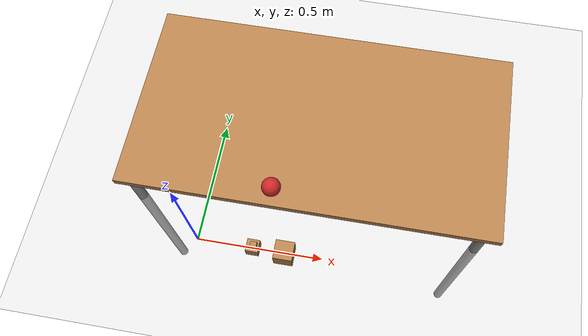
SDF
<sdf version="1.7">
 <world name="default">
  <light name="sun" type="directional">
   <pose>0 0 10 0 -0 0</pose>
   <diffuse>0.8 0.8 0.8 1</diffuse>
   <specular>0.2 0.2 0.2 1</specular>
   <attenuation>
    <range>1000</range>
    <constant>0.9</constant>
    <linear>0.01</linear>
    <quadratic>0.001</quadratic>
   </attenuation>
   <direction>-0.5 0.1 -0.9</direction>
   <spot><inner_angle>0</inner_angle><outer_angle>0</outer_angle><falloff>0</falloff></spot>
  </light>
  <model name="ground_plane">
   <static>1</static>
   <link name="link">
    <collision name="collision">
     <geometry><plane><normal>0 0 1</normal><size>100 100</size></plane></geometry>
     <surface><friction><ode><mu>100</mu><mu2>50</mu2></ode></friction></surface>
    </collision>
    <visual name="visual">
     <cast_shadows>0</cast_shadows>
     <geometry><plane><normal>0 0 1</normal><size>100 100</size></plane></geometry>
     <material>
      <script><uri>file://media/materials/scripts/gazebo.material</uri><name>Gazebo/Grey</name></script>
     </material>
    </visual>
   </link>
  </model>
  <gravity>0 0 -9.8</gravity>
  <magnetic_field>6e-06 2.3e-05 -4.2e-05</magnetic_field>
  <atmosphere type="adiabatic"/>
  <physics type="ode">
   <max_step_size>0.001</max_step_size>
   <real_time_factor>1</real_time_factor>
   <real_time_update_rate>1000</real_time_update_rate>
  </physics>
  <scene><ambient>0.4 0.4 0.4 1</ambient><background>0.7 0.7 0.7 1</background><shadows>1</shadows></scene>
  <audio><device>default</device></audio>
  <spherical_coordinates>
   <surface_model>EARTH_WGS84</surface_model>
   <latitude_deg>0</latitude_deg>
   <longitude_deg>0</longitude_deg>
   <elevation>0</elevation>
   <heading_deg>0</heading_deg>
  </spherical_coordinates>
  <model name="wood_cube_2_5cm">
   <link name="link">
    <pose>0 0 0.0125 0 -0 0</pose>
    <inertial>
     <mass>0.0073</mass>
     <inertia>
      <ixx>7.60417e-07</ixx>
      <ixy>0</ixy>
      <ixz>0</ixz>
      <iyy>7.60417e-07</iyy>
      <iyz>0</iyz>
      <izz>7.60417e-07</izz>
     </inertia>
    </inertial>
    <collision name="collision">
     <geometry><box><size>0.025 0.025 0.025</size></box></geometry>
     <surface>
      <contact>
       <poissons_ratio>0.347</poissons_ratio>
       <elastic_modulus>8.8e+09</elastic_modulus>
       <ode><kp>100000</kp><kd>100</kd><max_vel>100</max_vel><min_depth>0.001</min_depth></ode>
      </contact>
      <friction>
       <torsional>
        <coefficient>1</coefficient>
        <use_patch_radius>0</use_patch_radius>
        <surface_radius>0.01</surface_radius>
       </torsional>
      </friction>
     </surface>
    </collision>
    <visual name="visual">
     <geometry><box><size>0.025 0.025 0.025</size></box></geometry>
     <material>
      <script><uri>file://media/materials/scripts/gazebo.material</uri><name>Gazebo/Wood</name></script>
     </material>
    </visual>
   </link>
   <pose>0.231735 -0.01913 0.060951 -1.57284 0.006912 -0.008883</pose>
  </model>
  <model name="wood_cube_5cm">
   <link name="link">
    <pose>0 0 0.025 0 -0 0</pose>
    <inertial>
     <mass>0.0565</mass>
     <inertia>
      <ixx>2.35417e-05</ixx>
      <ixy>0</ixy>
      <ixz>0</ixz>
      <iyy>2.35417e-05</iyy>
      <iyz>0</iyz>
      <izz>2.35417e-05</izz>
     </inertia>
    </inertial>
    <collision name="collision">
     <geometry><box><size>0.05 0.05 0.05</size></box></geometry>
     <surface>
      <contact>
       <poissons_ratio>0.347</poissons_ratio>
       <elastic_modulus>8.8e+09</elastic_modulus>
       <ode><kp>100000</kp><kd>1</kd><max_vel>1</max_vel><min_depth>0.001</min_depth></ode>
      </contact>
      <friction>
       <torsional>
        <coefficient>1</coefficient>
        <use_patch_radius>0</use_patch_radius>
        <surface_radius>0.05</surface_radius>
       </torsional>
      </friction>
     </surface>
    </collision>
    <visual name="visual">
     <geometry><box><size>0.05 0.05 0.05</size></box></geometry>
     <material>
      <script><uri>file://media/materials/scripts/gazebo.material</uri><name>Gazebo/Wood</name></script>
     </material>
    </visual>
   </link>
   <pose>0.226391 -0.004136 -0.001002 1e-06 2e-06 -0.004732</pose>
  </model>
  <model name="wood_cube_7_5cm">
   <link name="link">
    <pose>0 0 0.0375 0 -0 0</pose>
    <inertial>
     <mass>0.2249</mass>
     <inertia>
      <ixx>0.000210844</ixx>
      <ixy>0</ixy>
      <ixz>0</ixz>
      <iyy>0.000210844</iyy>
      <iyz>0</iyz>
      <izz>0.000210844</izz>
     </inertia>
    </inertial>
    <collision name="collision">
     <geometry><box><size>0.075 0.075 0.075</size></box></geometry>
     <surface>
      <contact>
       <poissons_ratio>0.347</poissons_ratio>
       <elastic_modulus>8.8e+09</elastic_modulus>
       <ode><kp>100000</kp><kd>100</kd><max_vel>100</max_vel><min_depth>0.001</min_depth></ode>
      </contact>
      <friction>
       <torsional>
        <coefficient>1</coefficient>
        <use_patch_radius>0</use_patch_radius>
        <surface_radius>0.01</surface_radius>
       </torsional>
      </friction>
     </surface>
    </collision>
    <visual name="visual">
     <geometry><box><size>0.075 0.075 0.075</size></box></geometry>
     <material>
      <script><uri>file://media/materials/scripts/gazebo.material</uri><name>Gazebo/Wood</name></script>
     </material>
    </visual>
   </link>
   <pose>0.352497 -0.008918 -0.001015 -1e-06 -6e-06 0.000666</pose>
  </model>
  <model name="table">
   <static>1</static>
   <link name="link">
    <collision name="surface">
     <pose>0 0 1 0 -0 0</pose>
     <geometry><box><size>1.5 0.8 0.03</size></box></geometry>
     <surface><friction><ode><mu>0.6</mu><mu2>0.6</mu2></ode></friction></surface>
    </collision>
    <visual name="visual1">
     <pose>0 0 1 0 -0 0</pose>
     <geometry><box><size>1.5 0.8 0.03</size></box></geometry>
     <material>
      <script><uri>file://media/materials/scripts/gazebo.material</uri><name>Gazebo/Wood</name></script>
     </material>
    </visual>
    <collision name="front_left_leg">
     <pose>0.68 0.38 0.5 0 -0 0</pose>
     <geometry><cylinder><radius>0.02</radius><length>1</length></cylinder></geometry>
    </collision>
    <visual name="front_left_leg">
     <pose>0.68 0.38 0.5 0 -0 0</pose>
     <geometry><cylinder><radius>0.02</radius><length>1</length></cylinder></geometry>
     <material>
      <script><uri>file://media/materials/scripts/gazebo.material</uri><name>Gazebo/Grey</name></script>
     </material>
    </visual>
    <collision name="front_right_leg">
     <pose>0.68 -0.38 0.5 0 -0 0</pose>
     <geometry><cylinder><radius>0.02</radius><length>1</length></cylinder></geometry>
    </collision>
    <visual name="front_right_leg">
     <pose>0.68 -0.38 0.5 0 -0 0</pose>
     <geometry><cylinder><radius>0.02</radius><length>1</length></cylinder></geometry>
     <material>
      <script><uri>file://media/materials/scripts/gazebo.material</uri><name>Gazebo/Grey</name></script>
     </material>
    </visual>
    <collision name="back_right_leg">
     <pose>-0.68 -0.38 0.5 0 -0 0</pose>
     <geometry><cylinder><radius>0.02</radius><length>1</length></cylinder></geometry>
    </collision>
    <visual name="back_right_leg">
     <pose>-0.68 -0.38 0.5 0 -0 0</pose>
     <geometry><cylinder><radius>0.02</radius><length>1</length></cylinder></geometry>
     <material>
      <script><uri>file://media/materials/scripts/gazebo.material</uri><name>Gazebo/Grey</name></script>
     </material>
    </visual>
    <collision name="back_left_leg">
     <pose>-0.68 0.38 0.5 0 -0 0</pose>
     <geometry><cylinder><radius>0.02</radius><length>1</length></cylinder></geometry>
    </collision>
    <visual name="back_left_leg">
     <pose>-0.68 0.38 0.5 0 -0 0</pose>
     <geometry><cylinder><radius>0.02</radius><length>1</length></cylinder></geometry>
     <material>
      <script><uri>file://media/materials/scripts/gazebo.material</uri><name>Gazebo/Grey</name></script>
     </material>
    </visual>
   </link>
   <pose>0.407634 0.525998 -0.843891 0 -0 0</pose>
  </model>
  <model name="cricket_ball">
   <link name="link">
    <pose>0 0 0.0375 0 -0 0</pose>
    <inertial>
     <mass>0.1467</mass>
     <inertia>
      <ixx>8.25187e-05</ixx>
      <ixy>0</ixy>
      <ixz>0</ixz>
      <iyy>8.25187e-05</iyy>
      <iyz>0</iyz>
      <izz>8.25187e-05</izz>
     </inertia>
    </inertial>
    <collision name="collision">
     <geometry><sphere><radius>0.0375</radius></sphere></geometry>
     <surface>
      <contact>
       <poissons_ratio>0.347</poissons_ratio>
       <elastic_modulus>8.8e+09</elastic_modulus>
       <ode><kp>100000</kp><kd>100</kd><max_vel>100</max_vel><min_depth>0.001</min_depth></ode>
      </contact>
      <friction>
       <torsional>
        <coefficient>1</coefficient>
        <use_patch_radius>0</use_patch_radius>
        <surface_radius>0.01</surface_radius>
       </torsional>
      </friction>
     </surface>
    </collision>
    <visual name="visual">
     <geometry><sphere><radius>0.0375</radius></sphere></geometry>
     <material>
      <script><uri>file://media/materials/scripts/gazebo.material</uri><name>Gazebo/Red</name></script>
     </material>
    </visual>
    <velocity_decay><linear>0</linear><angular>0.005</angular></velocity_decay>
   </link>
   <pose>0.272758 0.188285 0.170095 0 -0 0</pose>
  </model>
 </world>
</sdf>
